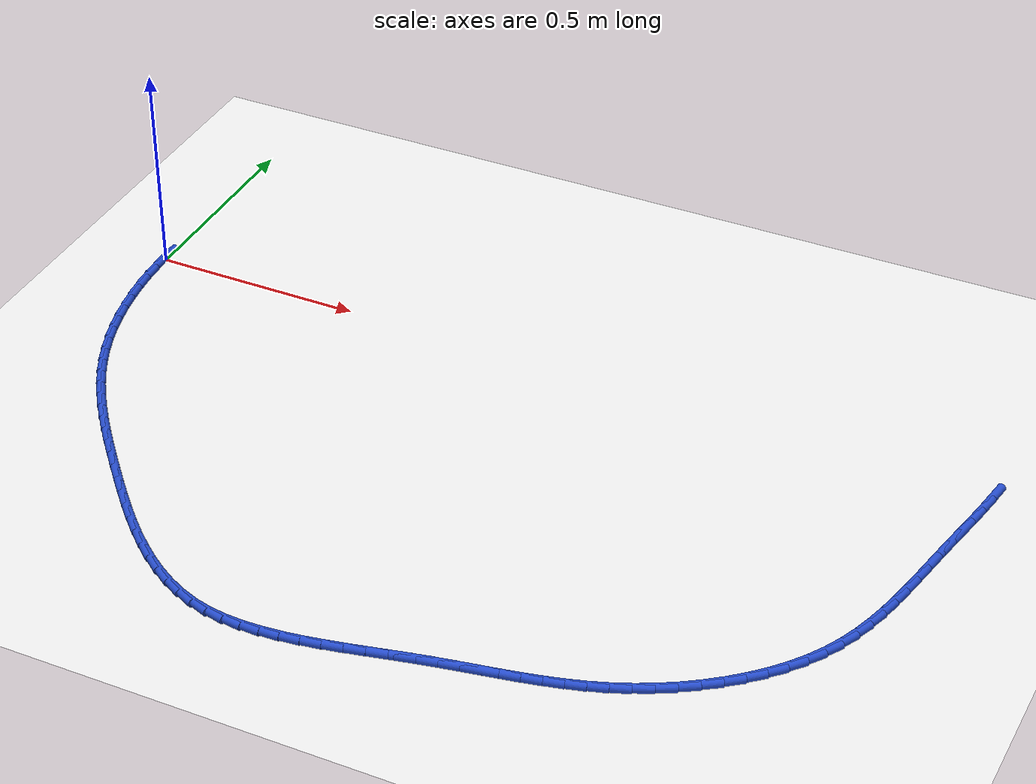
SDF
<sdf version="1.6">
 <world name="default">
  <model name="ground_plane">
   <static>1</static>
   <link name="link">
    <collision name="collision">
     <geometry><plane><normal>0 0 1</normal><size>100 100</size></plane></geometry>
     <surface><friction><ode><mu>100</mu><mu2>50</mu2></ode></friction></surface>
    </collision>
    <visual name="visual">
     <cast_shadows>0</cast_shadows>
     <geometry><plane><normal>0 0 1</normal><size>100 100</size></plane></geometry>
     <material>
      <script><uri>file://media/materials/scripts/gazebo.material</uri><name>Gazebo/WhiteGlow</name></script>
     </material>
    </visual>
   </link>
  </model>
  <model name="line">
   <link name="link_0">
    <pose>-3.8163916471489756e-17 5.551115123125783e-17 0.01 0 1.57 1.5495764687321787</pose>
    <collision name="collision">
     <geometry><cylinder><radius>0.01</radius><length>0.08</length></cylinder></geometry>
    </collision>
    <visual name="visual">
     <material>
      <script><name>Gazebo/Blue</name><uri>file://media/materials/scripts/gazebo.material</uri></script>
     </material>
     <geometry><cylinder><radius>0.01</radius><length>0.08</length></cylinder></geometry>
    </visual>
   </link>
   <link name="link_76">
    <pose>2.063426740699451 -0.029982615938653305 0.01 0 1.57 1.4103534676827447</pose>
    <collision name="collision">
     <geometry><cylinder><radius>0.01</radius><length>0.08</length></cylinder></geometry>
    </collision>
    <visual name="visual">
     <material>
      <script><name>Gazebo/Blue</name><uri>file://media/materials/scripts/gazebo.material</uri></script>
     </material>
     <geometry><cylinder><radius>0.01</radius><length>0.08</length></cylinder></geometry>
    </visual>
   </link>
   <link name="link_77">
    <pose>2.0560999326853326 -0.07525624929588384 0.01 0 1.57 1.388486364912847</pose>
    <collision name="collision">
     <geometry><cylinder><radius>0.01</radius><length>0.08</length></cylinder></geometry>
    </collision>
    <visual name="visual">
     <material>
      <script><name>Gazebo/Blue</name><uri>file://media/materials/scripts/gazebo.material</uri></script>
     </material>
     <geometry><cylinder><radius>0.01</radius><length>0.08</length></cylinder></geometry>
    </visual>
   </link>
   <link name="link_78">
    <pose>2.0477018559431035 -0.1208095902386504 0.01 0 1.57 1.3761526418535677</pose>
    <collision name="collision">
     <geometry><cylinder><radius>0.01</radius><length>0.08</length></cylinder></geometry>
    </collision>
    <visual name="visual">
     <material>
      <script><name>Gazebo/Blue</name><uri>file://media/materials/scripts/gazebo.material</uri></script>
     </material>
     <geometry><cylinder><radius>0.01</radius><length>0.08</length></cylinder></geometry>
    </visual>
   </link>
   <link name="link_79">
    <pose>2.0386978295851352 -0.16648293833467348 0.01 0 1.57 1.3730230821510676</pose>
    <collision name="collision">
     <geometry><cylinder><radius>0.01</radius><length>0.08</length></cylinder></geometry>
    </collision>
    <visual name="visual">
     <material>
      <script><name>Gazebo/Blue</name><uri>file://media/materials/scripts/gazebo.material</uri></script>
     </material>
     <geometry><cylinder><radius>0.01</radius><length>0.08</length></cylinder></geometry>
    </visual>
   </link>
   <link name="link_80">
    <pose>2.0295531727237983 -0.21211659315167058 0.01 0 1.57 1.3789358060772101</pose>
    <collision name="collision">
     <geometry><cylinder><radius>0.01</radius><length>0.08</length></cylinder></geometry>
    </collision>
    <visual name="visual">
     <material>
      <script><name>Gazebo/Blue</name><uri>file://media/materials/scripts/gazebo.material</uri></script>
     </material>
     <geometry><cylinder><radius>0.01</radius><length>0.08</length></cylinder></geometry>
    </visual>
   </link>
   <link name="link_81">
    <pose>2.02072753233871 -0.25755106662509986 0.01 0 1.57 1.3870120859816333</pose>
    <collision name="collision">
     <geometry><cylinder><radius>0.01</radius><length>0.08</length></cylinder></geometry>
    </collision>
    <visual name="visual">
     <material>
      <script><name>Gazebo/Blue</name><uri>file://media/materials/scripts/gazebo.material</uri></script>
     </material>
     <geometry><cylinder><radius>0.01</radius><length>0.08</length></cylinder></geometry>
    </visual>
   </link>
   <link name="link_82">
    <pose>2.0123464358924736 -0.3026393803069979 0.01 0 1.57 1.3863110543281771</pose>
    <collision name="collision">
     <geometry><cylinder><radius>0.01</radius><length>0.08</length></cylinder></geometry>
    </collision>
    <visual name="visual">
     <material>
      <script><name>Gazebo/Blue</name><uri>file://media/materials/scripts/gazebo.material</uri></script>
     </material>
     <geometry><cylinder><radius>0.01</radius><length>0.08</length></cylinder></geometry>
    </visual>
   </link>
   <link name="link_83">
    <pose>2.0040210642558507 -0.3472538131657623 0.01 0 1.57 1.3755993160708306</pose>
    <collision name="collision">
     <geometry><cylinder><radius>0.01</radius><length>0.08</length></cylinder></geometry>
    </collision>
    <visual name="visual">
     <material>
      <script><name>Gazebo/Blue</name><uri>file://media/materials/scripts/gazebo.material</uri></script>
     </material>
     <geometry><cylinder><radius>0.01</radius><length>0.08</length></cylinder></geometry>
    </visual>
   </link>
   <link name="link_84">
    <pose>1.995318764450522 -0.3912682853329614 0.01 0 1.57 1.3545010622409475</pose>
    <collision name="collision">
     <geometry><cylinder><radius>0.01</radius><length>0.08</length></cylinder></geometry>
    </collision>
    <visual name="visual">
     <material>
      <script><name>Gazebo/Blue</name><uri>file://media/materials/scripts/gazebo.material</uri></script>
     </material>
     <geometry><cylinder><radius>0.01</radius><length>0.08</length></cylinder></geometry>
    </visual>
   </link>
   <link name="link_85">
    <pose>1.9858068834981693 -0.43455671694016074 0.01 0 1.57 1.322603540720857</pose>
    <collision name="collision">
     <geometry><cylinder><radius>0.01</radius><length>0.08</length></cylinder></geometry>
    </collision>
    <visual name="visual">
     <material>
      <script><name>Gazebo/Blue</name><uri>file://media/materials/scripts/gazebo.material</uri></script>
     </material>
     <geometry><cylinder><radius>0.01</radius><length>0.08</length></cylinder></geometry>
    </visual>
   </link>
   <link name="link_86">
    <pose>1.9750527684204717 -0.4769930281189288 0.01 0 1.57 1.2795261151456148</pose>
    <collision name="collision">
     <geometry><cylinder><radius>0.01</radius><length>0.08</length></cylinder></geometry>
    </collision>
    <visual name="visual">
     <material>
      <script><name>Gazebo/Blue</name><uri>file://media/materials/scripts/gazebo.material</uri></script>
     </material>
     <geometry><cylinder><radius>0.01</radius><length>0.08</length></cylinder></geometry>
    </visual>
   </link>
   <link name="link_87">
    <pose>1.96262376623911 -0.5184511390008315 0.01 0 1.57 1.225039741363762</pose>
    <collision name="collision">
     <geometry><cylinder><radius>0.01</radius><length>0.08</length></cylinder></geometry>
    </collision>
    <visual name="visual">
     <material>
      <script><name>Gazebo/Blue</name><uri>file://media/materials/scripts/gazebo.material</uri></script>
     </material>
     <geometry><cylinder><radius>0.01</radius><length>0.08</length></cylinder></geometry>
    </visual>
   </link>
   <link name="link_88">
    <pose>1.9480872239757663 -0.5588049697174357 0.01 0 1.57 1.1592396995801482</pose>
    <collision name="collision">
     <geometry><cylinder><radius>0.01</radius><length>0.08</length></cylinder></geometry>
    </collision>
    <visual name="visual">
     <material>
      <script><name>Gazebo/Blue</name><uri>file://media/materials/scripts/gazebo.material</uri></script>
     </material>
     <geometry><cylinder><radius>0.01</radius><length>0.08</length></cylinder></geometry>
    </visual>
   </link>
   <link name="link_89">
    <pose>1.9310104886521189 -0.5979284404003091 0.01 0 1.57 1.0827546974197662</pose>
    <collision name="collision">
     <geometry><cylinder><radius>0.01</radius><length>0.08</length></cylinder></geometry>
    </collision>
    <visual name="visual">
     <material>
      <script><name>Gazebo/Blue</name><uri>file://media/materials/scripts/gazebo.material</uri></script>
     </material>
     <geometry><cylinder><radius>0.01</radius><length>0.08</length></cylinder></geometry>
    </visual>
   </link>
   <link name="link_90">
    <pose>1.9109609072898504 -0.6356954711810183 0.01 0 1.57 0.9985711677754051</pose>
    <collision name="collision">
     <geometry><cylinder><radius>0.01</radius><length>0.08</length></cylinder></geometry>
    </collision>
    <visual name="visual">
     <material>
      <script><name>Gazebo/Blue</name><uri>file://media/materials/scripts/gazebo.material</uri></script>
     </material>
     <geometry><cylinder><radius>0.01</radius><length>0.08</length></cylinder></geometry>
    </visual>
   </link>
   <link name="link_91">
    <pose>1.8875893618296247 -0.6719803586936813 0.01 0 1.57 0.9172974985908072</pose>
    <collision name="collision">
     <geometry><cylinder><radius>0.01</radius><length>0.08</length></cylinder></geometry>
    </collision>
    <visual name="visual">
     <material>
      <script><name>Gazebo/Blue</name><uri>file://media/materials/scripts/gazebo.material</uri></script>
     </material>
     <geometry><cylinder><radius>0.01</radius><length>0.08</length></cylinder></geometry>
    </visual>
   </link>
   <link name="link_92">
    <pose>1.8610340831217045 -0.70665959611621 0.01 0 1.57 0.8418720980825509</pose>
    <collision name="collision">
     <geometry><cylinder><radius>0.01</radius><length>0.08</length></cylinder></geometry>
    </collision>
    <visual name="visual">
     <material>
      <script><name>Gazebo/Blue</name><uri>file://media/materials/scripts/gazebo.material</uri></script>
     </material>
     <geometry><cylinder><radius>0.01</radius><length>0.08</length></cylinder></geometry>
    </visual>
   </link>
   <link name="link_93">
    <pose>1.8316095430301003 -0.7396104709672787 0.01 0 1.57 0.7714595808323332</pose>
    <collision name="collision">
     <geometry><cylinder><radius>0.01</radius><length>0.08</length></cylinder></geometry>
    </collision>
    <visual name="visual">
     <material>
      <script><name>Gazebo/Blue</name><uri>file://media/materials/scripts/gazebo.material</uri></script>
     </material>
     <geometry><cylinder><radius>0.01</radius><length>0.08</length></cylinder></geometry>
    </visual>
   </link>
   <link name="link_94">
    <pose>1.7996304548961404 -0.7707102718539324 0.01 0 1.57 0.7051711377813616</pose>
    <collision name="collision">
     <geometry><cylinder><radius>0.01</radius><length>0.08</length></cylinder></geometry>
    </collision>
    <visual name="visual">
     <material>
      <script><name>Gazebo/Blue</name><uri>file://media/materials/scripts/gazebo.material</uri></script>
     </material>
     <geometry><cylinder><radius>0.01</radius><length>0.08</length></cylinder></geometry>
    </visual>
   </link>
   <link name="link_95">
    <pose>1.7654115320611552 -0.7998362873832144 0.01 0 1.57 0.6421094103159712</pose>
    <collision name="collision">
     <geometry><cylinder><radius>0.01</radius><length>0.08</length></cylinder></geometry>
    </collision>
    <visual name="visual">
     <material>
      <script><name>Gazebo/Blue</name><uri>file://media/materials/scripts/gazebo.material</uri></script>
     </material>
     <geometry><cylinder><radius>0.01</radius><length>0.08</length></cylinder></geometry>
    </visual>
   </link>
   <link name="link_96">
    <pose>1.7292674878664767 -0.8268658061621688 0.01 0 1.57 0.5813846611601123</pose>
    <collision name="collision">
     <geometry><cylinder><radius>0.01</radius><length>0.08</length></cylinder></geometry>
    </collision>
    <visual name="visual">
     <material>
      <script><name>Gazebo/Blue</name><uri>file://media/materials/scripts/gazebo.material</uri></script>
     </material>
     <geometry><cylinder><radius>0.01</radius><length>0.08</length></cylinder></geometry>
    </visual>
   </link>
   <link name="link_97">
    <pose>1.6915130356534325 -0.8516761167978396 0.01 0 1.57 0.5221143795875888</pose>
    <collision name="collision">
     <geometry><cylinder><radius>0.01</radius><length>0.08</length></cylinder></geometry>
    </collision>
    <visual name="visual">
     <material>
      <script><name>Gazebo/Blue</name><uri>file://media/materials/scripts/gazebo.material</uri></script>
     </material>
     <geometry><cylinder><radius>0.01</radius><length>0.08</length></cylinder></geometry>
    </visual>
   </link>
   <link name="link_98">
    <pose>1.6524628887633543 -0.8741445078972708 0.01 0 1.57 0.46341168590054727</pose>
    <collision name="collision">
     <geometry><cylinder><radius>0.01</radius><length>0.08</length></cylinder></geometry>
    </collision>
    <visual name="visual">
     <material>
      <script><name>Gazebo/Blue</name><uri>file://media/materials/scripts/gazebo.material</uri></script>
     </material>
     <geometry><cylinder><radius>0.01</radius><length>0.08</length></cylinder></geometry>
    </visual>
   </link>
   <link name="link_99">
    <pose>1.612431760537572 -0.894148268067507 0.01 0 1.57 0.40437478050641573</pose>
    <collision name="collision">
     <geometry><cylinder><radius>0.01</radius><length>0.08</length></cylinder></geometry>
    </collision>
    <visual name="visual">
     <material>
      <script><name>Gazebo/Blue</name><uri>file://media/materials/scripts/gazebo.material</uri></script>
     </material>
     <geometry><cylinder><radius>0.01</radius><length>0.08</length></cylinder></geometry>
    </visual>
   </link>
   <link name="link_100">
    <pose>1.5717340461097469 -0.9115652455759534 0.01 0 1.57 0.3465878747477048</pose>
    <collision name="collision">
     <geometry><cylinder><radius>0.01</radius><length>0.08</length></cylinder></geometry>
    </collision>
    <visual name="visual">
     <material>
      <script><name>Gazebo/Blue</name><uri>file://media/materials/scripts/gazebo.material</uri></script>
     </material>
     <geometry><cylinder><radius>0.01</radius><length>0.08</length></cylinder></geometry>
    </visual>
   </link>
   <link name="link_101">
    <pose>1.5305998488441002 -0.9264215401843415 0.01 0 1.57 0.2960236837055181</pose>
    <collision name="collision">
     <geometry><cylinder><radius>0.01</radius><length>0.08</length></cylinder></geometry>
    </collision>
    <visual name="visual">
     <material>
      <script><name>Gazebo/Blue</name><uri>file://media/materials/scripts/gazebo.material</uri></script>
     </material>
     <geometry><cylinder><radius>0.01</radius><length>0.08</length></cylinder></geometry>
    </visual>
   </link>
   <link name="link_102">
    <pose>1.48906217897578 -0.9390898970160924 0.01 0 1.57 0.254350281482187</pose>
    <collision name="collision">
     <geometry><cylinder><radius>0.01</radius><length>0.08</length></cylinder></geometry>
    </collision>
    <visual name="visual">
     <material>
      <script><name>Gazebo/Blue</name><uri>file://media/materials/scripts/gazebo.material</uri></script>
     </material>
     <geometry><cylinder><radius>0.01</radius><length>0.08</length></cylinder></geometry>
    </visual>
   </link>
   <link name="link_103">
    <pose>1.447125921174958 -0.9499925281480897 0.01 0 1.57 0.22209851754818755</pose>
    <collision name="collision">
     <geometry><cylinder><radius>0.01</radius><length>0.08</length></cylinder></geometry>
    </collision>
    <visual name="visual">
     <material>
      <script><name>Gazebo/Blue</name><uri>file://media/materials/scripts/gazebo.material</uri></script>
     </material>
     <geometry><cylinder><radius>0.01</radius><length>0.08</length></cylinder></geometry>
    </visual>
   </link>
   <link name="link_104">
    <pose>1.4047959601118085 -0.9595516456572184 0.01 0 1.57 0.19951181701839185</pose>
    <collision name="collision">
     <geometry><cylinder><radius>0.01</radius><length>0.08</length></cylinder></geometry>
    </collision>
    <visual name="visual">
     <material>
      <script><name>Gazebo/Blue</name><uri>file://media/materials/scripts/gazebo.material</uri></script>
     </material>
     <geometry><cylinder><radius>0.01</radius><length>0.08</length></cylinder></geometry>
    </visual>
   </link>
   <link name="link_105">
    <pose>1.3620771804565015 -0.9681894616203632 0.01 0 1.57 0.1866244298329445</pose>
    <collision name="collision">
     <geometry><cylinder><radius>0.01</radius><length>0.08</length></cylinder></geometry>
    </collision>
    <visual name="visual">
     <material>
      <script><name>Gazebo/Blue</name><uri>file://media/materials/scripts/gazebo.material</uri></script>
     </material>
     <geometry><cylinder><radius>0.01</radius><length>0.08</length></cylinder></geometry>
    </visual>
   </link>
   <link name="link_106">
    <pose>1.3189744668792112 -0.9763281881144091 0.01 0 1.57 0.18332584483264286</pose>
    <collision name="collision">
     <geometry><cylinder><radius>0.01</radius><length>0.08</length></cylinder></geometry>
    </collision>
    <visual name="visual">
     <material>
      <script><name>Gazebo/Blue</name><uri>file://media/materials/scripts/gazebo.material</uri></script>
     </material>
     <geometry><cylinder><radius>0.01</radius><length>0.08</length></cylinder></geometry>
    </visual>
   </link>
   <link name="link_107">
    <pose>1.2754927040501078 -0.9843900372162409 0.01 0 1.57 0.1894022569899105</pose>
    <collision name="collision">
     <geometry><cylinder><radius>0.01</radius><length>0.08</length></cylinder></geometry>
    </collision>
    <visual name="visual">
     <material>
      <script><name>Gazebo/Blue</name><uri>file://media/materials/scripts/gazebo.material</uri></script>
     </material>
     <geometry><cylinder><radius>0.01</radius><length>0.08</length></cylinder></geometry>
    </visual>
   </link>
   <link name="link_108">
    <pose>1.2316367766393652 -0.9927972210027429 0.01 0 1.57 0.2043867088588449</pose>
    <collision name="collision">
     <geometry><cylinder><radius>0.01</radius><length>0.08</length></cylinder></geometry>
    </collision>
    <visual name="visual">
     <material>
      <script><name>Gazebo/Blue</name><uri>file://media/materials/scripts/gazebo.material</uri></script>
     </material>
     <geometry><cylinder><radius>0.01</radius><length>0.08</length></cylinder></geometry>
    </visual>
   </link>
   <link name="link_109">
    <pose>1.18741270011433 -1.0019640359764574 0.01 0 1.57 0.2202714927499286</pose>
    <collision name="collision">
     <geometry><cylinder><radius>0.01</radius><length>0.08</length></cylinder></geometry>
    </collision>
    <visual name="visual">
     <material>
      <script><name>Gazebo/Blue</name><uri>file://media/materials/scripts/gazebo.material</uri></script>
     </material>
     <geometry><cylinder><radius>0.01</radius><length>0.08</length></cylinder></geometry>
    </visual>
   </link>
   <link name="link_110">
    <pose>1.142879276904552 -1.0119352701788327 0.01 0 1.57 0.2264511709118849</pose>
    <collision name="collision">
     <geometry><cylinder><radius>0.01</radius><length>0.08</length></cylinder></geometry>
    </collision>
    <visual name="visual">
     <material>
      <script><name>Gazebo/Blue</name><uri>file://media/materials/scripts/gazebo.material</uri></script>
     </material>
     <geometry><cylinder><radius>0.01</radius><length>0.08</length></cylinder></geometry>
    </visual>
   </link>
   <link name="link_111">
    <pose>1.0981694760964607 -1.022236545438597 0.01 0 1.57 0.22237307216003485</pose>
    <collision name="collision">
     <geometry><cylinder><radius>0.01</radius><length>0.08</length></cylinder></geometry>
    </collision>
    <visual name="visual">
     <material>
      <script><name>Gazebo/Blue</name><uri>file://media/materials/scripts/gazebo.material</uri></script>
     </material>
     <geometry><cylinder><radius>0.01</radius><length>0.08</length></cylinder></geometry>
    </visual>
   </link>
   <link name="link_112">
    <pose>1.0534218291147832 -1.032354547245323 0.01 0 1.57 0.2079691683169514</pose>
    <collision name="collision">
     <geometry><cylinder><radius>0.01</radius><length>0.08</length></cylinder></geometry>
    </collision>
    <visual name="visual">
     <material>
      <script><name>Gazebo/Blue</name><uri>file://media/materials/scripts/gazebo.material</uri></script>
     </material>
     <geometry><cylinder><radius>0.01</radius><length>0.08</length></cylinder></geometry>
    </visual>
   </link>
   <link name="link_113">
    <pose>1.008774867384243 -1.041775961088585 0.01 0 1.57 0.18284638124481403</pose>
    <collision name="collision">
     <geometry><cylinder><radius>0.01</radius><length>0.08</length></cylinder></geometry>
    </collision>
    <visual name="visual">
     <material>
      <script><name>Gazebo/Blue</name><uri>file://media/materials/scripts/gazebo.material</uri></script>
     </material>
     <geometry><cylinder><radius>0.01</radius><length>0.08</length></cylinder></geometry>
    </visual>
   </link>
   <link name="link_114">
    <pose>0.9643671223295665 -1.0499874724579554 0.01 0 1.57 0.14630780248117248</pose>
    <collision name="collision">
     <geometry><cylinder><radius>0.01</radius><length>0.08</length></cylinder></geometry>
    </collision>
    <visual name="visual">
     <material>
      <script><name>Gazebo/Blue</name><uri>file://media/materials/scripts/gazebo.material</uri></script>
     </material>
     <geometry><cylinder><radius>0.01</radius><length>0.08</length></cylinder></geometry>
    </visual>
   </link>
   <link name="link_115">
    <pose>0.9203371253754768 -1.056475766843008 0.01 0 1.57 0.09740167047353514</pose>
    <collision name="collision">
     <geometry><cylinder><radius>0.01</radius><length>0.08</length></cylinder></geometry>
    </collision>
    <visual name="visual">
     <material>
      <script><name>Gazebo/Blue</name><uri>file://media/materials/scripts/gazebo.material</uri></script>
     </material>
     <geometry><cylinder><radius>0.01</radius><length>0.08</length></cylinder></geometry>
    </visual>
   </link>
   <link name="link_116">
    <pose>0.8768234079467004 -1.060727529733316 0.01 0 1.57 0.03502895105117812</pose>
    <collision name="collision">
     <geometry><cylinder><radius>0.01</radius><length>0.08</length></cylinder></geometry>
    </collision>
    <visual name="visual">
     <material>
      <script><name>Gazebo/Blue</name><uri>file://media/materials/scripts/gazebo.material</uri></script>
     </material>
     <geometry><cylinder><radius>0.01</radius><length>0.08</length></cylinder></geometry>
    </visual>
   </link>
   <link name="link_117">
    <pose>0.8339645014679629 -1.0622294466184528 0.01 0 1.57 -0.04184457257091613</pose>
    <collision name="collision">
     <geometry><cylinder><radius>0.01</radius><length>0.08</length></cylinder></geometry>
    </collision>
    <visual name="visual">
     <material>
      <script><name>Gazebo/Blue</name><uri>file://media/materials/scripts/gazebo.material</uri></script>
     </material>
     <geometry><cylinder><radius>0.01</radius><length>0.08</length></cylinder></geometry>
    </visual>
   </link>
   <link name="link_118">
    <pose>0.7918989373639876 -1.060468202987991 0.01 0 1.57 -0.13382270444300284</pose>
    <collision name="collision">
     <geometry><cylinder><radius>0.01</radius><length>0.08</length></cylinder></geometry>
    </collision>
    <visual name="visual">
     <material>
      <script><name>Gazebo/Blue</name><uri>file://media/materials/scripts/gazebo.material</uri></script>
     </material>
     <geometry><cylinder><radius>0.01</radius><length>0.08</length></cylinder></geometry>
    </visual>
   </link>
   <link name="link_119">
    <pose>0.7507652470595015 -1.0549304843315048 0.01 0 1.57 -0.240058819465173</pose>
    <collision name="collision">
     <geometry><cylinder><radius>0.01</radius><length>0.08</length></cylinder></geometry>
    </collision>
    <visual name="visual">
     <material>
      <script><name>Gazebo/Blue</name><uri>file://media/materials/scripts/gazebo.material</uri></script>
     </material>
     <geometry><cylinder><radius>0.01</radius><length>0.08</length></cylinder></geometry>
    </visual>
   </link>
   <link name="link_120">
    <pose>0.7106978485266054 -1.0451228247607454 0.01 0 1.57 -0.347752987059093</pose>
    <collision name="collision">
     <geometry><cylinder><radius>0.01</radius><length>0.08</length></cylinder></geometry>
    </collision>
    <visual name="visual">
     <material>
      <script><name>Gazebo/Blue</name><uri>file://media/materials/scripts/gazebo.material</uri></script>
     </material>
     <geometry><cylinder><radius>0.01</radius><length>0.08</length></cylinder></geometry>
    </visual>
   </link>
   <link name="link_121">
    <pose>0.6717381512756133 -1.03100055164873 0.01 0 1.57 -0.4441633525556774</pose>
    <collision name="collision">
     <geometry><cylinder><radius>0.01</radius><length>0.08</length></cylinder></geometry>
    </collision>
    <visual name="visual">
     <material>
      <script><name>Gazebo/Blue</name><uri>file://media/materials/scripts/gazebo.material</uri></script>
     </material>
     <geometry><cylinder><radius>0.01</radius><length>0.08</length></cylinder></geometry>
    </visual>
   </link>
   <link name="link_122">
    <pose>0.6338354371713131 -1.0129635354314657 0.01 0 1.57 -0.5282294170745127</pose>
    <collision name="collision">
     <geometry><cylinder><radius>0.01</radius><length>0.08</length></cylinder></geometry>
    </collision>
    <visual name="visual">
     <material>
      <script><name>Gazebo/Blue</name><uri>file://media/materials/scripts/gazebo.material</uri></script>
     </material>
     <geometry><cylinder><radius>0.01</radius><length>0.08</length></cylinder></geometry>
    </visual>
   </link>
   <link name="link_123">
    <pose>0.5969350507941215 -0.9914306451033548 0.01 0 1.57 -0.6002523314800684</pose>
    <collision name="collision">
     <geometry><cylinder><radius>0.01</radius><length>0.08</length></cylinder></geometry>
    </collision>
    <visual name="visual">
     <material>
      <script><name>Gazebo/Blue</name><uri>file://media/materials/scripts/gazebo.material</uri></script>
     </material>
     <geometry><cylinder><radius>0.01</radius><length>0.08</length></cylinder></geometry>
    </visual>
   </link>
   <link name="link_124">
    <pose>0.5609823367244576 -0.9668207496587998 0.01 0 1.57 -0.6610321182513098</pose>
    <collision name="collision">
     <geometry><cylinder><radius>0.01</radius><length>0.08</length></cylinder></geometry>
    </collision>
    <visual name="visual">
     <material>
      <script><name>Gazebo/Blue</name><uri>file://media/materials/scripts/gazebo.material</uri></script>
     </material>
     <geometry><cylinder><radius>0.01</radius><length>0.08</length></cylinder></geometry>
    </visual>
   </link>
   <link name="link_125">
    <pose>0.5259226395427402 -0.939552718092204 0.01 0 1.57 -0.7115621655489835</pose>
    <collision name="collision">
     <geometry><cylinder><radius>0.01</radius><length>0.08</length></cylinder></geometry>
    </collision>
    <visual name="visual">
     <material>
      <script><name>Gazebo/Blue</name><uri>file://media/materials/scripts/gazebo.material</uri></script>
     </material>
     <geometry><cylinder><radius>0.01</radius><length>0.08</length></cylinder></geometry>
    </visual>
   </link>
   <link name="link_126">
    <pose>0.49170130382938604 -0.9100454193979688 0.01 0 1.57 -0.7528315574929069</pose>
    <collision name="collision">
     <geometry><cylinder><radius>0.01</radius><length>0.08</length></cylinder></geometry>
    </collision>
    <visual name="visual">
     <material>
      <script><name>Gazebo/Blue</name><uri>file://media/materials/scripts/gazebo.material</uri></script>
     </material>
     <geometry><cylinder><radius>0.01</radius><length>0.08</length></cylinder></geometry>
    </visual>
   </link>
   <link name="link_127">
    <pose>0.4582636741648148 -0.8787177225704984 0.01 0 1.57 -0.7857136833059722</pose>
    <collision name="collision">
     <geometry><cylinder><radius>0.01</radius><length>0.08</length></cylinder></geometry>
    </collision>
    <visual name="visual">
     <material>
      <script><name>Gazebo/Blue</name><uri>file://media/materials/scripts/gazebo.material</uri></script>
     </material>
     <geometry><cylinder><radius>0.01</radius><length>0.08</length></cylinder></geometry>
    </visual>
   </link>
   <link name="link_128">
    <pose>0.4255550951294433 -0.8459884966041936 0.01 0 1.57 -0.8109105366215131</pose>
    <collision name="collision">
     <geometry><cylinder><radius>0.01</radius><length>0.08</length></cylinder></geometry>
    </collision>
    <visual name="visual">
     <material>
      <script><name>Gazebo/Blue</name><uri>file://media/materials/scripts/gazebo.material</uri></script>
     </material>
     <geometry><cylinder><radius>0.01</radius><length>0.08</length></cylinder></geometry>
    </visual>
   </link>
   <link name="link_129">
    <pose>0.3935209113036905 -0.8122766104934583 0.01 0 1.57 -0.8289271721679313</pose>
    <collision name="collision">
     <geometry><cylinder><radius>0.01</radius><length>0.08</length></cylinder></geometry>
    </collision>
    <visual name="visual">
     <material>
      <script><name>Gazebo/Blue</name><uri>file://media/materials/scripts/gazebo.material</uri></script>
     </material>
     <geometry><cylinder><radius>0.01</radius><length>0.08</length></cylinder></geometry>
    </visual>
   </link>
   <link name="link_130">
    <pose>0.3621064672679751 -0.7780009332326954 0.01 0 1.57 -0.8400585680276428</pose>
    <collision name="collision">
     <geometry><cylinder><radius>0.01</radius><length>0.08</length></cylinder></geometry>
    </collision>
    <visual name="visual">
     <material>
      <script><name>Gazebo/Blue</name><uri>file://media/materials/scripts/gazebo.material</uri></script>
     </material>
     <geometry><cylinder><radius>0.01</radius><length>0.08</length></cylinder></geometry>
    </visual>
   </link>
   <link name="link_131">
    <pose>0.3312571076027141 -0.7435803338163063 0.01 0 1.57 -0.8462920401384216</pose>
    <collision name="collision">
     <geometry><cylinder><radius>0.01</radius><length>0.08</length></cylinder></geometry>
    </collision>
    <visual name="visual">
     <material>
      <script><name>Gazebo/Blue</name><uri>file://media/materials/scripts/gazebo.material</uri></script>
     </material>
     <geometry><cylinder><radius>0.01</radius><length>0.08</length></cylinder></geometry>
    </visual>
   </link>
   <link name="link_132">
    <pose>0.3009527205981132 -0.7093407489527715 0.01 0 1.57 -0.855595498718708</pose>
    <collision name="collision">
     <geometry><cylinder><radius>0.01</radius><length>0.08</length></cylinder></geometry>
    </collision>
    <visual name="visual">
     <material>
      <script><name>Gazebo/Blue</name><uri>file://media/materials/scripts/gazebo.material</uri></script>
     </material>
     <geometry><cylinder><radius>0.01</radius><length>0.08</length></cylinder></geometry>
    </visual>
   </link>
   <link name="link_133">
    <pose>0.27131672642602817 -0.6752219742572366 0.01 0 1.57 -0.870186191136808</pose>
    <collision name="collision">
     <geometry><cylinder><radius>0.01</radius><length>0.08</length></cylinder></geometry>
    </collision>
    <visual name="visual">
     <material>
      <script><name>Gazebo/Blue</name><uri>file://media/materials/scripts/gazebo.material</uri></script>
     </material>
     <geometry><cylinder><radius>0.01</radius><length>0.08</length></cylinder></geometry>
    </visual>
   </link>
   <link name="link_134">
    <pose>0.2425098190067441 -0.6410635284878531 0.01 0 1.57 -0.8902219472477649</pose>
    <collision name="collision">
     <geometry><cylinder><radius>0.01</radius><length>0.08</length></cylinder></geometry>
    </collision>
    <visual name="visual">
     <material>
      <script><name>Gazebo/Blue</name><uri>file://media/materials/scripts/gazebo.material</uri></script>
     </material>
     <geometry><cylinder><radius>0.01</radius><length>0.08</length></cylinder></geometry>
    </visual>
   </link>
   <link name="link_135">
    <pose>0.2146926923336831 -0.606704930206014 0.01 0 1.57 -0.9158330612616549</pose>
    <collision name="collision">
     <geometry><cylinder><radius>0.01</radius><length>0.08</length></cylinder></geometry>
    </collision>
    <visual name="visual">
     <material>
      <script><name>Gazebo/Blue</name><uri>file://media/materials/scripts/gazebo.material</uri></script>
     </material>
     <geometry><cylinder><radius>0.01</radius><length>0.08</length></cylinder></geometry>
    </visual>
   </link>
   <link name="link_136">
    <pose>0.188026040400266 -0.5719856979731103 0.01 0 1.57 -0.9471016533273959</pose>
    <collision name="collision">
     <geometry><cylinder><radius>0.01</radius><length>0.08</length></cylinder></geometry>
    </collision>
    <visual name="visual">
     <material>
      <script><name>Gazebo/Blue</name><uri>file://media/materials/scripts/gazebo.material</uri></script>
     </material>
     <geometry><cylinder><radius>0.01</radius><length>0.08</length></cylinder></geometry>
    </visual>
   </link>
   <link name="link_137">
    <pose>0.1626705571999149 -0.5367453503505344 0.01 0 1.57 -0.9840347929161846</pose>
    <collision name="collision">
     <geometry><cylinder><radius>0.01</radius><length>0.08</length></cylinder></geometry>
    </collision>
    <visual name="visual">
     <material>
      <script><name>Gazebo/Blue</name><uri>file://media/materials/scripts/gazebo.material</uri></script>
     </material>
     <geometry><cylinder><radius>0.01</radius><length>0.08</length></cylinder></geometry>
    </visual>
   </link>
   <link name="link_138">
    <pose>0.13878693672605197 -0.5008234058996791 0.01 0 1.57 -1.0265326585581545</pose>
    <collision name="collision">
     <geometry><cylinder><radius>0.01</radius><length>0.08</length></cylinder></geometry>
    </collision>
    <visual name="visual">
     <material>
      <script><name>Gazebo/Blue</name><uri>file://media/materials/scripts/gazebo.material</uri></script>
     </material>
     <geometry><cylinder><radius>0.01</radius><length>0.08</length></cylinder></geometry>
    </visual>
   </link>
   <link name="link_139">
    <pose>0.11653587297209794 -0.46405938318193524 0.01 0 1.57 -1.0743548575787816</pose>
    <collision name="collision">
     <geometry><cylinder><radius>0.01</radius><length>0.08</length></cylinder></geometry>
    </collision>
    <visual name="visual">
     <material>
      <script><name>Gazebo/Blue</name><uri>file://media/materials/scripts/gazebo.material</uri></script>
     </material>
     <geometry><cylinder><radius>0.01</radius><length>0.08</length></cylinder></geometry>
    </visual>
   </link>
   <link name="link_140">
    <pose>0.0960780599314754 -0.4262928007586964 0.01 0 1.57 -1.126956649308389</pose>
    <collision name="collision">
     <geometry><cylinder><radius>0.01</radius><length>0.08</length></cylinder></geometry>
    </collision>
    <visual name="visual">
     <material>
      <script><name>Gazebo/Blue</name><uri>file://media/materials/scripts/gazebo.material</uri></script>
     </material>
     <geometry><cylinder><radius>0.01</radius><length>0.08</length></cylinder></geometry>
    </visual>
   </link>
   <link name="link_141">
    <pose>0.07757060891262835 -0.3873690570453605 0.01 0 1.57 -1.1807288619903884</pose>
    <collision name="collision">
     <geometry><cylinder><radius>0.01</radius><length>0.08</length></cylinder></geometry>
    </collision>
    <visual name="visual">
     <material>
      <script><name>Gazebo/Blue</name><uri>file://media/materials/scripts/gazebo.material</uri></script>
     </material>
     <geometry><cylinder><radius>0.01</radius><length>0.08</length></cylinder></geometry>
    </visual>
   </link>
   <link name="link_142">
    <pose>0.06108572391202954 -0.347272899186494 0.01 0 1.57 -1.2324619882172865</pose>
    <collision name="collision">
     <geometry><cylinder><radius>0.01</radius><length>0.08</length></cylinder></geometry>
    </collision>
    <visual name="visual">
     <material>
      <script><name>Gazebo/Blue</name><uri>file://media/materials/scripts/gazebo.material</uri></script>
     </material>
     <geometry><cylinder><radius>0.01</radius><length>0.08</length></cylinder></geometry>
    </visual>
   </link>
   <link name="link_143">
    <pose>0.04660928586032566 -0.3061307465718592 0.01 0 1.57 -1.2821918308708289</pose>
    <collision name="collision">
     <geometry><cylinder><radius>0.01</radius><length>0.08</length></cylinder></geometry>
    </collision>
    <visual name="visual">
     <material>
      <script><name>Gazebo/Blue</name><uri>file://media/materials/scripts/gazebo.material</uri></script>
     </material>
     <geometry><cylinder><radius>0.01</radius><length>0.08</length></cylinder></geometry>
    </visual>
   </link>
   <link name="link_144">
    <pose>0.03412330982814182 -0.26407536318826536 0.01 0 1.57 -1.3301169208428596</pose>
    <collision name="collision">
     <geometry><cylinder><radius>0.01</radius><length>0.08</length></cylinder></geometry>
    </collision>
    <visual name="visual">
     <material>
      <script><name>Gazebo/Blue</name><uri>file://media/materials/scripts/gazebo.material</uri></script>
     </material>
     <geometry><cylinder><radius>0.01</radius><length>0.08</length></cylinder></geometry>
    </visual>
   </link>
   <link name="link_145">
    <pose>0.023609810886104074 -0.2212395130225253 0.01 0 1.57 -1.3764476151645773</pose>
    <collision name="collision">
     <geometry><cylinder><radius>0.01</radius><length>0.08</length></cylinder></geometry>
    </collision>
    <visual name="visual">
     <material>
      <script><name>Gazebo/Blue</name><uri>file://media/materials/scripts/gazebo.material</uri></script>
     </material>
     <geometry><cylinder><radius>0.01</radius><length>0.08</length></cylinder></geometry>
    </visual>
   </link>
   <link name="link_146">
    <pose>0.015050804104837664 -0.17775596006144828 0.01 0 1.57 -1.4214012705032752</pose>
    <collision name="collision">
     <geometry><cylinder><radius>0.01</radius><length>0.08</length></cylinder></geometry>
    </collision>
    <visual name="visual">
     <material>
      <script><name>Gazebo/Blue</name><uri>file://media/materials/scripts/gazebo.material</uri></script>
     </material>
     <geometry><cylinder><radius>0.01</radius><length>0.08</length></cylinder></geometry>
    </visual>
   </link>
   <link name="link_147">
    <pose>0.00842830455496844 -0.13375746829184615 0.01 0 1.57 -1.4651989973091895</pose>
    <collision name="collision">
     <geometry><cylinder><radius>0.01</radius><length>0.08</length></cylinder></geometry>
    </collision>
    <visual name="visual">
     <material>
      <script><name>Gazebo/Blue</name><uri>file://media/materials/scripts/gazebo.material</uri></script>
     </material>
     <geometry><cylinder><radius>0.01</radius><length>0.08</length></cylinder></geometry>
    </visual>
   </link>
   <link name="link_148">
    <pose>0.003724327307122058 -0.0893768017005305 0.01 0 1.57 -1.5080637137895418</pose>
    <collision name="collision">
     <geometry><cylinder><radius>0.01</radius><length>0.08</length></cylinder></geometry>
    </collision>
    <visual name="visual">
     <material>
      <script><name>Gazebo/Blue</name><uri>file://media/materials/scripts/gazebo.material</uri></script>
     </material>
     <geometry><cylinder><radius>0.01</radius><length>0.08</length></cylinder></geometry>
    </visual>
   </link>
   <link name="link_149">
    <pose>0.0009208874319239953 -0.044746724274311 0.01 0 1.57 -1.550219234948606</pose>
    <collision name="collision">
     <geometry><cylinder><radius>0.01</radius><length>0.08</length></cylinder></geometry>
    </collision>
    <visual name="visual">
     <material>
      <script><name>Gazebo/Blue</name><uri>file://media/materials/scripts/gazebo.material</uri></script>
     </material>
     <geometry><cylinder><radius>0.01</radius><length>0.08</length></cylinder></geometry>
    </visual>
   </link>
   <link name="link_150">
    <pose>-3.2959746043559335e-17 -2.7755575615628914e-17 0.01 0 1.57 1.5497024902748946</pose>
    <collision name="collision">
     <geometry><cylinder><radius>0.01</radius><length>0.08</length></cylinder></geometry>
    </collision>
    <visual name="visual">
     <material>
      <script><name>Gazebo/Blue</name><uri>file://media/materials/scripts/gazebo.material</uri></script>
     </material>
     <geometry><cylinder><radius>0.01</radius><length>0.08</length></cylinder></geometry>
    </visual>
   </link>
  </model>
 </world>
</sdf>
